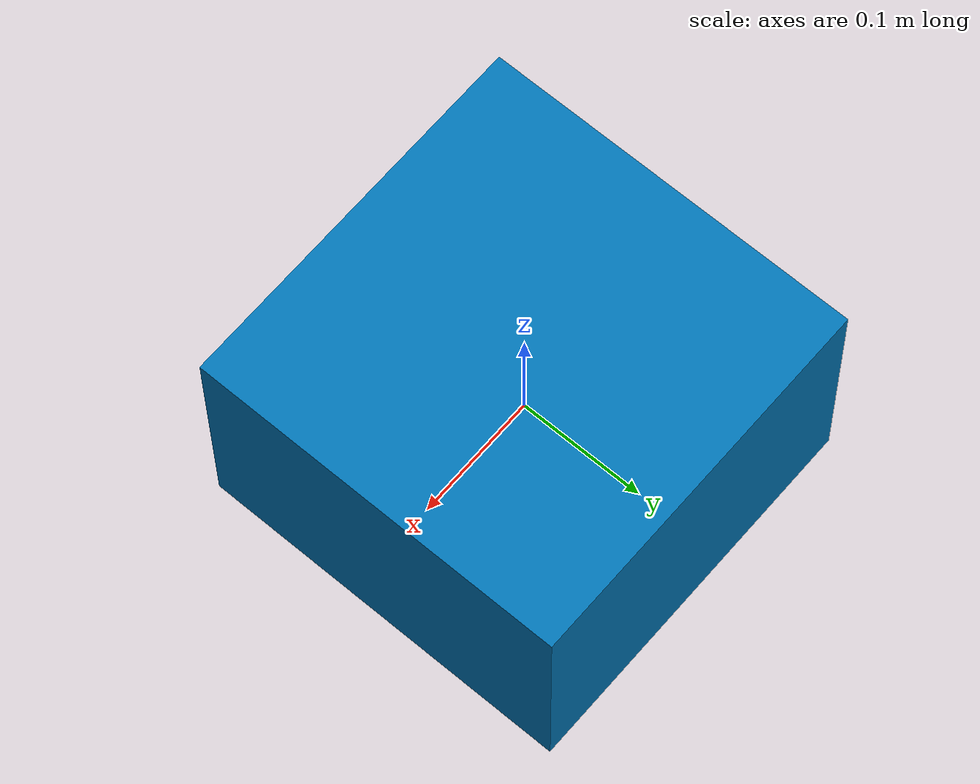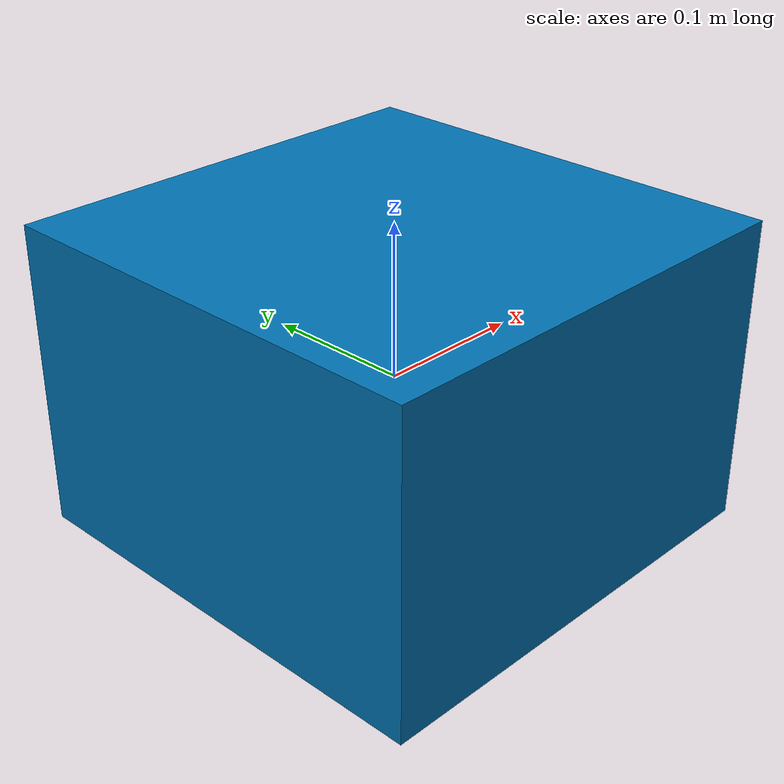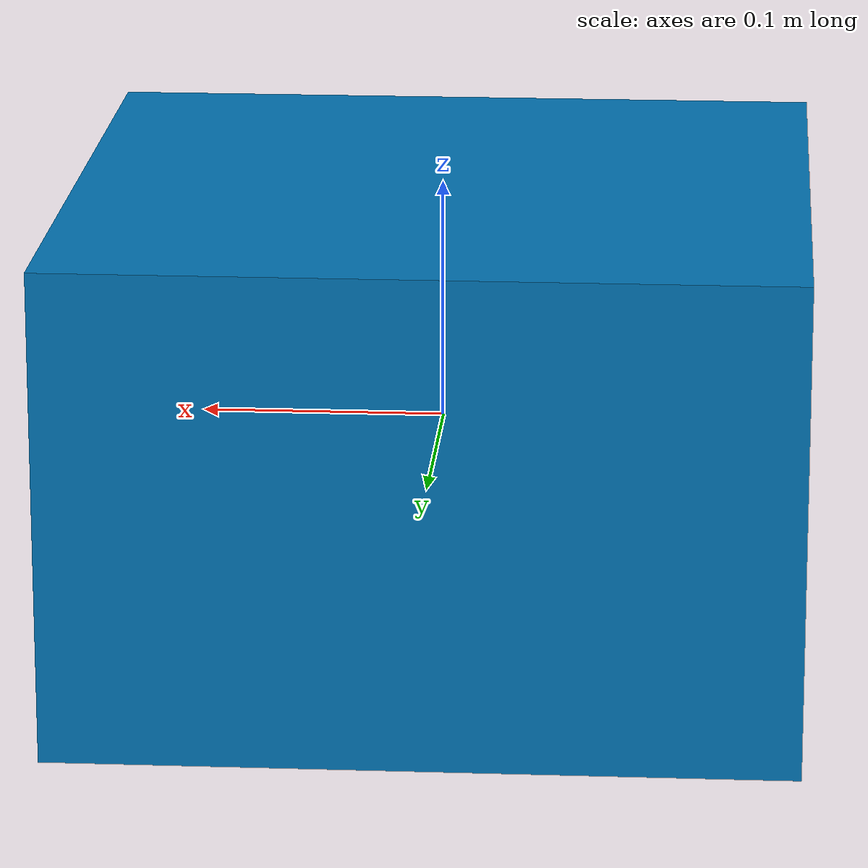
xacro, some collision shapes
<?xml version="1.0"?>
<robot name="roboke" xmlns:xacro="http://www.ros.org/wiki/xacro">
<xacro:include filename="/home/samet/Desktop/robomaster-stl-files/wheels/kodlar/arkatekerler/omnihazirL.xacro"/>
<xacro:include filename="/home/samet/Desktop/robomaster-stl-files/wheels/kodlar/arkatekerler/omnihazirR.xacro"/>
<xacro:include filename="/home/samet/Desktop/robomaster-stl-files/wheels/kodlar/arkatekerler/arkahazirL.xacro"/>
<xacro:include filename="/home/samet/Desktop/robomaster-stl-files/wheels/kodlar/arkatekerler/arkahazirR.xacro"/>
<xacro:include filename="/home/samet/Desktop/robomaster-stl-files/wheels/kodlar/chasishazir.xacro"/>

<xacro:leko/>
<xacro:leko2/>
<xacro:leko3/>
<xacro:leko4/>

<joint name="joint_name2" type="continuous">
    <parent link="basee_link"/>
    <child link="base_link"/>
    <axis xyz="0 0 1"/>
    <origin xyz="0 0 0" rpy="0 0 0"/>
</joint>
<joint name="joint_name3" type="continuous">
    <parent link="basee_link"/>
    <child link="base_link2"/>
    <axis xyz="0 0 1"/>
    <origin xyz="0 0 0" rpy="0 0 0"/>
</joint>
<joint name="joint_name4" type="continuous">
    <parent link="basee_link"/>
    <child link="base_link3"/>
    <axis xyz="0 0 1"/>
    <origin xyz="0 0 0" rpy="0 0 0"/>
</joint>
<joint name="joint_name5" type="continuous">
    <parent link="basee_link"/>
    <child link="base_link4"/>
    <axis xyz="0 0 1"/>
    <origin xyz="0 0 0" rpy="0 0 0"/>
</joint>
<xacro:chasis/>

</robot>

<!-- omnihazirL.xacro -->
<robot xmlns:xacro="http://www.ros.org/wiki/xacro" >
<xacro:macro name="leko">

<link name="base_link">
      <inertial>
        <origin xyz="0 0 0" rpy="0 0 0"/>
        <mass value="0.5"/>
        <inertia ixx="0.1" ixy="0" ixz="0" iyy="0.1" iyz="0" izz="0.1"/>
      </inertial>
      <visual name="visual_0_base_link">
        <origin xyz="0 0 0" rpy="0 0 0"/>
        <geometry>
          <mesh filename="/home/samet/Desktop/isaac_robomaster/meshes/stl/mecanummain.stl" scale="0.002 0.002 0.002"/>
        </geometry>
      </visual>
      <collision name="collision_0_base_link">
        <origin xyz="0 0 0" rpy="0 0 0"/>
        <geometry>
          <cylinder radius="0.1" length="0.08"/>
        </geometry>
      </collision>
    </link>

    <link name="mcn1">
      <inertial>
        <origin xyz="0 0 0" rpy="0 0 0"/>
        <mass value="0.03"/>
        <inertia ixx="0.1" ixy="0" ixz="0" iyy="0.1" iyz="0" izz="0.1"/>
      </inertial>
      <visual name="visual_0_mcn1">
        <origin xyz="0 0 0" rpy="0 0 0"/>
        <geometry>
          <mesh filename="/home/samet/Desktop/isaac_robomaster/meshes/stl/mecanumroller.stl" scale="0.002 0.002 0.002"/>
        </geometry>
      </visual>
      <collision name="collision_0_mcn1">
        <origin xyz="0 0 0" rpy="0 0 0"/>
        <geometry>
          <mesh filename="/home/samet/Desktop/isaac_robomaster/meshes/stl/mecanumroller.stl" scale="0.002 0.002 0.002"/>
        </geometry>
      </collision>
    </link>

    <link name="mcn10">
      <inertial>
        <origin xyz="0 0 0" rpy="0 0 0"/>
        <mass value="0.03"/>
        <inertia ixx="0.1" ixy="0" ixz="0" iyy="0.1" iyz="0" izz="0.1"/>
      </inertial>
      <visual name="visual_0_mcn10">
        <origin xyz="0 0 0" rpy="0 0 0"/>
        <geometry>
          <mesh filename="/home/samet/Desktop/isaac_robomaster/meshes/stl/mecanumroller.stl" scale="0.002 0.002 0.002"/>
        </geometry>
      </visual>
      <collision name="collision_0_mcn10">
        <origin xyz="0 0 0" rpy="0 0 0"/>
        <geometry>
          <mesh filename="/home/samet/Desktop/isaac_robomaster/meshes/stl/mecanumroller.stl" scale="0.002 0.002 0.002"/>
        </geometry>
      </collision>
    </link>

    <link name="mcn11">
      <inertial>
        <origin xyz="0 0 0" rpy="0 0 0"/>
        <mass value="0.03"/>
        <inertia ixx="0.1" ixy="0" ixz="0" iyy="0.1" iyz="0" izz="0.1"/>
      </inertial>
      <visual name="visual_0_mcn11">
        <origin xyz="0 0 0" rpy="0 0 0"/>
        <geometry>
          <mesh filename="/home/samet/Desktop/isaac_robomaster/meshes/stl/mecanumroller.stl" scale="0.002 0.002 0.002"/>
        </geometry>
      </visual>
      <collision name="collision_0_mcn11">
        <origin xyz="0 0 0" rpy="0 0 0"/>
        <geometry>
          <mesh filename="/home/samet/Desktop/isaac_robomaster/meshes/stl/mecanumroller.stl" scale="0.002 0.002 0.002"/>
        </geometry>
      </collision>
    </link>

    <link name="mcn12">
      <inertial>
        <origin xyz="0 0 0" rpy="0 0 0"/>
        <mass value="0.03"/>
        <inertia ixx="0.1" ixy="0" ixz="0" iyy="0.1" iyz="0" izz="0.1"/>
      </inertial>
      <visual name="visual_0_mcn12">
        <origin xyz="0 0 0" rpy="0 0 0"/>
        <geometry>
          <mesh filename="/home/samet/Desktop/isaac_robomaster/meshes/stl/mecanumroller.stl" scale="0.002 0.002 0.002"/>
        </geometry>
      </visual>
      <collision name="collision_0_mcn12">
        <origin xyz="0 0 0" rpy="0 0 0"/>
        <geometry>
          <mesh filename="/home/samet/Desktop/isaac_robomaster/meshes/stl/mecanumroller.stl" scale="0.002 0.002 0.002"/>
        </geometry>
      </collision>
    </link>

    <link name="mcn2">
      <inertial>
        <origin xyz="0 0 0" rpy="0 0 0"/>
        <mass value="0.03"/>
        <inertia ixx="0.1" ixy="0" ixz="0" iyy="0.1" iyz="0" izz="0.1"/>
      </inertial>
      <visual name="visual_0_mcn2">
        <origin xyz="0 0 0" rpy="0 0 0"/>
        <geometry>
          <mesh filename="/home/samet/Desktop/isaac_robomaster/meshes/stl/mecanumroller.stl" scale="0.002 0.002 0.002"/>
        </geometry>
      </visual>
      <collision name="collision_0_mcn2">
        <origin xyz="0 0 0" rpy="0 0 0"/>
        <geometry>
          <mesh filename="/home/samet/Desktop/isaac_robomaster/meshes/stl/mecanumroller.stl" scale="0.002 0.002 0.002"/>
        </geometry>
      </collision>
    </link>

    <link name="mcn3">
      <inertial>
        <origin xyz="0 0 0" rpy="0 0 0"/>
        <mass value="0.03"/>
        <inertia ixx="0.1" ixy="0" ixz="0" iyy="0.1" iyz="0" izz="0.1"/>
      </inertial>
      <visual name="visual_0_mcn3">
        <origin xyz="0 0 0" rpy="0 0 0"/>
        <geometry>
          <mesh filename="/home/samet/Desktop/isaac_robomaster/meshes/stl/mecanumroller.stl" scale="0.002 0.002 0.002"/>
        </geometry>
      </visual>
      <collision name="collision_0_mcn3">
        <origin xyz="0 0 0" rpy="0 0 0"/>
        <geometry>
          <mesh filename="/home/samet/Desktop/isaac_robomaster/meshes/stl/mecanumroller.stl" scale="0.002 0.002 0.002"/>
        </geometry>
      </collision>
    </link>

    <link name="mcn4">
      <inertial>
        <origin xyz="0 0 0" rpy="0 0 0"/>
        <mass value="0.03"/>
        <inertia ixx="0.1" ixy="0" ixz="0" iyy="0.1" iyz="0" izz="0.1"/>
      </inertial>
      <visual name="visual_0_mcn4">
        <origin xyz="0 0 0" rpy="0 0 0"/>
        <geometry>
          <mesh filename="/home/samet/Desktop/isaac_robomaster/meshes/stl/mecanumroller.stl" scale="0.002 0.002 0.002"/>
        </geometry>
      </visual>
      <collision name="collision_0_mcn4">
        <origin xyz="0 0 0" rpy="0 0 0"/>
        <geometry>
          <mesh filename="/home/samet/Desktop/isaac_robomaster/meshes/stl/mecanumroller.stl" scale="0.002 0.002 0.002"/>
        </geometry>
      </collision>
    </link>

    <link name="mcn5">
      <inertial>
        <origin xyz="0 0 0" rpy="0 0 0"/>
        <mass value="0.03"/>
        <inertia ixx="0.1" ixy="0" ixz="0" iyy="0.1" iyz="0" izz="0.1"/>
      </inertial>
      <visual name="visual_0_mcn5">
        <origin xyz="0 0 0" rpy="0 0 0"/>
        <geometry>
          <mesh filename="/home/samet/Desktop/isaac_robomaster/meshes/stl/mecanumroller.stl" scale="0.002 0.002 0.002"/>
        </geometry>
      </visual>
      <collision name="collision_0_mcn5">
        <origin xyz="0 0 0" rpy="0 0 0"/>
        <geometry>
          <mesh filename="/home/samet/Desktop/isaac_robomaster/meshes/stl/mecanumroller.stl" scale="0.002 0.002 0.002"/>
        </geometry>
      </collision>
    </link>

    <link name="mcn6">
      <inertial>
        <origin xyz="0 0 0" rpy="0 0 0"/>
        <mass value="0.03"/>
        <inertia ixx="0.1" ixy="0" ixz="0" iyy="0.1" iyz="0" izz="0.1"/>
      </inertial>
      <visual name="visual_0_mcn6">
        <origin xyz="0 0 0" rpy="0 0 0"/>
        <geometry>
          <mesh filename="/home/samet/Desktop/isaac_robomaster/meshes/stl/mecanumroller.stl" scale="0.002 0.002 0.002"/>
        </geometry>
      </visual>
      <collision name="collision_0_mcn6">
        <origin xyz="0 0 0" rpy="0 0 0"/>
        <geometry>
          <mesh filename="/home/samet/Desktop/isaac_robomaster/meshes/stl/mecanumroller.stl" scale="0.002 0.002 0.002"/>
        </geometry>
      </collision>
    </link>

    <link name="mcn7">
      <inertial>
        <origin xyz="0 0 0" rpy="0 0 0"/>
        <mass value="0.03"/>
        <inertia ixx="0.1" ixy="0" ixz="0" iyy="0.1" iyz="0" izz="0.1"/>
      </inertial>
      <visual name="visual_0_mcn7">
        <origin xyz="0 0 0" rpy="0 0 0"/>
        <geometry>
          <mesh filename="/home/samet/Desktop/isaac_robomaster/meshes/stl/mecanumroller.stl" scale="0.002 0.002 0.002"/>
        </geometry>
      </visual>
      <collision name="collision_0_mcn7">
        <origin xyz="0 0 0" rpy="0 0 0"/>
        <geometry>
          <mesh filename="/home/samet/Desktop/isaac_robomaster/meshes/stl/mecanumroller.stl" scale="0.002 0.002 0.002"/>
        </geometry>
      </collision>
    </link>

    <link name="mcn8">
      <inertial>
        <origin xyz="0 0 0" rpy="0 0 0"/>
        <mass value="0.03"/>
        <inertia ixx="0.1" ixy="0" ixz="0" iyy="0.1" iyz="0" izz="0.1"/>
      </inertial>
      <visual name="visual_0_mcn8">
        <origin xyz="0 0 0" rpy="0 0 0"/>
        <geometry>
          <mesh filename="/home/samet/Desktop/isaac_robomaster/meshes/stl/mecanumroller.stl" scale="0.002 0.002 0.002"/>
        </geometry>
      </visual>
      <collision name="collision_0_mcn8">
        <origin xyz="0 0 0" rpy="0 0 0"/>
        <geometry>
          <mesh filename="/home/samet/Desktop/isaac_robomaster/meshes/stl/mecanumroller.stl" scale="0.002 0.002 0.002"/>
        </geometry>
      </collision>
    </link>

    <link name="mcn9">
      <inertial>
        <origin xyz="0 0 0" rpy="0 0 0"/>
        <mass value="0.03"/>
        <inertia ixx="0.1" ixy="0" ixz="0" iyy="0.1" iyz="0" izz="0.1"/>
      </inertial>
      <visual name="visual_0_mcn9">
        <origin xyz="0 0 0" rpy="0 0 0"/>
        <geometry>
          <mesh filename="/home/samet/Desktop/isaac_robomaster/meshes/stl/mecanumroller.stl" scale="0.002 0.002 0.002"/>
        </geometry>
      </visual>
      <collision name="collision_0_mcn9">
        <origin xyz="0 0 0" rpy="0 0 0"/>
        <geometry>
          <mesh filename="/home/samet/Desktop/isaac_robomaster/meshes/stl/mecanumroller.stl" scale="0.002 0.002 0.002"/>
        </geometry>
      </collision>
    </link>

    <joint name="joint1" type="continuous">
      <origin xyz="0.07167 -0.05076 0.02846" rpy="-1.76186 -0.79552 1.05175"/>
      <parent link="base_link"/>
      <child link="mcn1"/>
      <axis xyz="1.0 0 0"/>
    </joint>

    <joint name="joint10" type="continuous">
      <origin xyz="-0.05038 -0.07171 0.02782" rpy="0.5806 -0.79466 -0.51932"/>
      <parent link="base_link"/>
      <child link="mcn10"/>
      <axis xyz="1.0 0 0"/>
    </joint>

    <joint name="joint11" type="continuous">
      <origin xyz="-0.00767 -0.08779 0.02845" rpy="0.10036 -0.79327 0.03137"/>
      <parent link="base_link"/>
      <child link="mcn11"/>
      <axis xyz="1.0 0 0"/>
    </joint>

    <joint name="joint12" type="continuous">
      <origin xyz="0.03673 -0.07863 0.02825" rpy="0.75677 -0.79045 0.52668"/>
      <parent link="base_link"/>
      <child link="mcn12"/>
      <axis xyz="1.0 0 0"/>
    </joint>

    <joint name="joint2" type="continuous">
      <origin xyz="0.0864 -0.00753 0.02879" rpy="0.83828 -0.82486 1.56595"/>
      <parent link="base_link"/>
      <child link="mcn2"/>
      <axis xyz="1.0 0 0"/>
    </joint>

    <joint name="joint3" type="continuous">
      <origin xyz="0.08054 0.03653 0.02804" rpy="-0.91674 -0.80295 2.13129"/>
      <parent link="base_link"/>
      <child link="mcn3"/>
      <axis xyz="1.0 0 0"/>
    </joint>

    <joint name="joint4" type="continuous">
      <origin xyz="0.05184 0.06967 0.02692" rpy="-0.10837 -2.34403 -0.53781"/>
      <parent link="base_link"/>
      <child link="mcn4"/>
      <axis xyz="1.0 0 0"/>
    </joint>

    <joint name="joint5" type="continuous">
      <origin xyz="0.00816 0.08667 0.02858" rpy="0.16079 -2.35154 0.00616"/>
      <parent link="base_link"/>
      <child link="mcn5"/>
      <axis xyz="1.0 0 0"/>
    </joint>

    <joint name="joint6" type="continuous">
      <origin xyz="-0.07119 0.05132 0.02734" rpy="-0.75572 -2.34708 1.04931"/>
      <parent link="base_link"/>
      <child link="mcn6"/>
      <axis xyz="1.0 0 0"/>
    </joint>

    <joint name="joint7" type="continuous">
      <origin xyz="-0.03617 0.07901 0.0277" rpy="-1.06708 -2.36432 0.51602"/>
      <parent link="base_link"/>
      <child link="mcn7"/>
      <axis xyz="1.0 0 0"/>
    </joint>

    <joint name="joint8" type="continuous">
      <origin xyz="-0.08659 0.00832 0.02734" rpy="1.5226 -0.80215 -1.58604"/>
      <parent link="base_link"/>
      <child link="mcn8"/>
      <axis xyz="1.0 0 0"/>
    </joint>

    <joint name="joint9" type="continuous">
      <origin xyz="-0.0796 -0.03654 0.02721" rpy="0.14692 -0.78569 -1.04079"/>
      <parent link="base_link"/>
      <child link="mcn9"/>
      <axis xyz="1.0 0 0"/>
    </joint>

</xacro:macro>
</robot>

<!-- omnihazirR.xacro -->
<robot xmlns:xacro="http://www.ros.org/wiki/xacro" >
<xacro:macro name="leko2">

<link name="base_link2">
      <inertial>
        <origin xyz="0 0 0" rpy="0 0 0"/>
        <mass value="0.5"/>
        <inertia ixx="0.1" ixy="0" ixz="0" iyy="0.1" iyz="0" izz="0.1"/>
      </inertial>
      <visual>
        <origin xyz="0 0 0" rpy="0 0 0"/>
        <geometry>
          <mesh filename="/home/samet/Desktop/isaac_robomaster/meshes/stl/mecanummain.stl" scale="0.002 0.002 0.002"/>
        </geometry>
      </visual>
      <collision>
        <origin xyz="0 0 0" rpy="0 0 0"/>
        <geometry>
          <cylinder radius="0.1" length="0.08"/>
        </geometry>
      </collision>
    </link>

    <link name="mcnN1">
      <inertial>
        <origin xyz="0 0 0" rpy="0 0 0"/>
        <mass value="0.03"/>
        <inertia ixx="0.1" ixy="0" ixz="0" iyy="0.1" iyz="0" izz="0.1"/>
      </inertial>
      <visual>
        <origin xyz="0 0 0" rpy="0 0 0"/>
        <geometry>
          <mesh filename="/home/samet/Desktop/isaac_robomaster/meshes/stl/mecanumroller.stl" scale="0.002 0.002 0.002"/>
        </geometry>
      </visual>
      <collision>
        <origin xyz="0 0 0" rpy="0 0 0"/>
        <geometry>
          <mesh filename="/home/samet/Desktop/isaac_robomaster/meshes/stl/mecanumroller.stl" scale="0.002 0.002 0.002"/>
        </geometry>
      </collision>
    </link>

    <link name="mcnN10">
      <inertial>
        <origin xyz="0 0 0" rpy="0 0 0"/>
        <mass value="0.03"/>
        <inertia ixx="0.1" ixy="0" ixz="0" iyy="0.1" iyz="0" izz="0.1"/>
      </inertial>
      <visual>
        <origin xyz="0 0 0" rpy="0 0 0"/>
        <geometry>
          <mesh filename="/home/samet/Desktop/isaac_robomaster/meshes/stl/mecanumroller.stl" scale="0.002 0.002 0.002"/>
        </geometry>
      </visual>
      <collision>
        <origin xyz="0 0 0" rpy="0 0 0"/>
        <geometry>
          <mesh filename="/home/samet/Desktop/isaac_robomaster/meshes/stl/mecanumroller.stl" scale="0.002 0.002 0.002"/>
        </geometry>
      </collision>
    </link>

    <link name="mcnN11">
      <inertial>
        <origin xyz="0 0 0" rpy="0 0 0"/>
        <mass value="0.03"/>
        <inertia ixx="0.1" ixy="0" ixz="0" iyy="0.1" iyz="0" izz="0.1"/>
      </inertial>
      <visual>
        <origin xyz="0 0 0" rpy="0 0 0"/>
        <geometry>
          <mesh filename="/home/samet/Desktop/isaac_robomaster/meshes/stl/mecanumroller.stl" scale="0.002 0.002 0.002"/>
        </geometry>
      </visual>
      <collision>
        <origin xyz="0 0 0" rpy="0 0 0"/>
        <geometry>
          <mesh filename="/home/samet/Desktop/isaac_robomaster/meshes/stl/mecanumroller.stl" scale="0.002 0.002 0.002"/>
        </geometry>
      </collision>
    </link>

    <link name="mcnN12">
      <inertial>
        <origin xyz="0 0 0" rpy="0 0 0"/>
        <mass value="0.03"/>
        <inertia ixx="0.1" ixy="0" ixz="0" iyy="0.1" iyz="0" izz="0.1"/>
      </inertial>
      <visual>
        <origin xyz="0 0 0" rpy="0 0 0"/>
        <geometry>
          <mesh filename="/home/samet/Desktop/isaac_robomaster/meshes/stl/mecanumroller.stl" scale="0.002 0.002 0.002"/>
        </geometry>
      </visual>
      <collision>
        <origin xyz="0 0 0" rpy="0 0 0"/>
        <geometry>
          <mesh filename="/home/samet/Desktop/isaac_robomaster/meshes/stl/mecanumroller.stl" scale="0.002 0.002 0.002"/>
        </geometry>
      </collision>
    </link>

    <link name="mcnN2">
      <inertial>
        <origin xyz="0 0 0" rpy="0 0 0"/>
        <mass value="0.03"/>
        <inertia ixx="0.1" ixy="0" ixz="0" iyy="0.1" iyz="0" izz="0.1"/>
      </inertial>
      <visual>
        <origin xyz="0 0 0" rpy="0 0 0"/>
        <geometry>
          <mesh filename="/home/samet/Desktop/isaac_robomaster/meshes/stl/mecanumroller.stl" scale="0.002 0.002 0.002"/>
        </geometry>
      </visual>
      <collision>
        <origin xyz="0 0 0" rpy="0 0 0"/>
        <geometry>
          <mesh filename="/home/samet/Desktop/isaac_robomaster/meshes/stl/mecanumroller.stl" scale="0.002 0.002 0.002"/>
        </geometry>
      </collision>
    </link>

    <link name="mcnN3">
      <inertial>
        <origin xyz="0 0 0" rpy="0 0 0"/>
        <mass value="0.03"/>
        <inertia ixx="0.1" ixy="0" ixz="0" iyy="0.1" iyz="0" izz="0.1"/>
      </inertial>
      <visual>
        <origin xyz="0 0 0" rpy="0 0 0"/>
        <geometry>
          <mesh filename="/home/samet/Desktop/isaac_robomaster/meshes/stl/mecanumroller.stl" scale="0.002 0.002 0.002"/>
        </geometry>
      </visual>
      <collision>
        <origin xyz="0 0 0" rpy="0 0 0"/>
        <geometry>
          <mesh filename="/home/samet/Desktop/isaac_robomaster/meshes/stl/mecanumroller.stl" scale="0.002 0.002 0.002"/>
        </geometry>
      </collision>
    </link>

    <link name="mcnN4">
      <inertial>
        <origin xyz="0 0 0" rpy="0 0 0"/>
        <mass value="0.03"/>
        <inertia ixx="0.1" ixy="0" ixz="0" iyy="0.1" iyz="0" izz="0.1"/>
      </inertial>
      <visual>
        <origin xyz="0 0 0" rpy="0 0 0"/>
        <geometry>
          <mesh filename="/home/samet/Desktop/isaac_robomaster/meshes/stl/mecanumroller.stl" scale="0.002 0.002 0.002"/>
        </geometry>
      </visual>
      <collision>
        <origin xyz="0 0 0" rpy="0 0 0"/>
        <geometry>
          <mesh filename="/home/samet/Desktop/isaac_robomaster/meshes/stl/mecanumroller.stl" scale="0.002 0.002 0.002"/>
        </geometry>
      </collision>
    </link>

    <link name="mcnN5">
      <inertial>
        <origin xyz="0 0 0" rpy="0 0 0"/>
        <mass value="0.03"/>
        <inertia ixx="0.1" ixy="0" ixz="0" iyy="0.1" iyz="0" izz="0.1"/>
      </inertial>
      <visual>
        <origin xyz="0 0 0" rpy="0 0 0"/>
        <geometry>
          <mesh filename="/home/samet/Desktop/isaac_robomaster/meshes/stl/mecanumroller.stl" scale="0.002 0.002 0.002"/>
        </geometry>
      </visual>
      <collision>
        <origin xyz="0 0 0" rpy="0 0 0"/>
        <geometry>
          <mesh filename="/home/samet/Desktop/isaac_robomaster/meshes/stl/mecanumroller.stl" scale="0.002 0.002 0.002"/>
        </geometry>
      </collision>
    </link>

    <link name="mcnN6">
      <inertial>
        <origin xyz="0 0 0" rpy="0 0 0"/>
        <mass value="0.03"/>
        <inertia ixx="0.1" ixy="0" ixz="0" iyy="0.1" iyz="0" izz="0.1"/>
      </inertial>
      <visual>
        <origin xyz="0 0 0" rpy="0 0 0"/>
        <geometry>
          <mesh filename="/home/samet/Desktop/isaac_robomaster/meshes/stl/mecanumroller.stl" scale="0.002 0.002 0.002"/>
        </geometry>
      </visual>
      <collision>
        <origin xyz="0 0 0" rpy="0 0 0"/>
        <geometry>
          <mesh filename="/home/samet/Desktop/isaac_robomaster/meshes/stl/mecanumroller.stl" scale="0.002 0.002 0.002"/>
        </geometry>
      </collision>
    </link>

    <link name="mcnN7">
      <inertial>
        <origin xyz="0 0 0" rpy="0 0 0"/>
        <mass value="0.03"/>
        <inertia ixx="0.1" ixy="0" ixz="0" iyy="0.1" iyz="0" izz="0.1"/>
      </inertial>
      <visual>
        <origin xyz="0 0 0" rpy="0 0 0"/>
        <geometry>
          <mesh filename="/home/samet/Desktop/isaac_robomaster/meshes/stl/mecanumroller.stl" scale="0.002 0.002 0.002"/>
        </geometry>
      </visual>
      <collision>
        <origin xyz="0 0 0" rpy="0 0 0"/>
        <geometry>
          <mesh filename="/home/samet/Desktop/isaac_robomaster/meshes/stl/mecanumroller.stl" scale="0.002 0.002 0.002"/>
        </geometry>
      </collision>
    </link>

    <link name="mcnN8">
      <inertial>
        <origin xyz="0 0 0" rpy="0 0 0"/>
        <mass value="0.03"/>
        <inertia ixx="0.1" ixy="0" ixz="0" iyy="0.1" iyz="0" izz="0.1"/>
      </inertial>
      <visual>
        <origin xyz="0 0 0" rpy="0 0 0"/>
        <geometry>
          <mesh filename="/home/samet/Desktop/isaac_robomaster/meshes/stl/mecanumroller.stl" scale="0.002 0.002 0.002"/>
        </geometry>
      </visual>
      <collision>
        <origin xyz="0 0 0" rpy="0 0 0"/>
        <geometry>
          <mesh filename="/home/samet/Desktop/isaac_robomaster/meshes/stl/mecanumroller.stl" scale="0.002 0.002 0.002"/>
        </geometry>
      </collision>
    </link>

    <link name="mcnN9">
      <inertial>
        <origin xyz="0 0 0" rpy="0 0 0"/>
        <mass value="0.03"/>
        <inertia ixx="0.1" ixy="0" ixz="0" iyy="0.1" iyz="0" izz="0.1"/>
      </inertial>
      <visual>
        <origin xyz="0 0 0" rpy="0 0 0"/>
        <geometry>
          <mesh filename="/home/samet/Desktop/isaac_robomaster/meshes/stl/mecanumroller.stl" scale="0.002 0.002 0.002"/>
        </geometry>
      </visual>
      <collision>
        <origin xyz="0 0 0" rpy="0 0 0"/>
        <geometry>
          <mesh filename="/home/samet/Desktop/isaac_robomaster/meshes/stl/mecanumroller.stl" scale="0.002 0.002 0.002"/>
        </geometry>
      </collision>
    </link>

    <joint name="jjoint1" type="continuous">
      <origin xyz="0.07167 -0.05076 0.02846" rpy="-1.76186 -0.79552 1.05175"/>
      <parent link="base_link2"/>
      <child link="mcnN1"/>
      <axis xyz="1.0 0 0"/>
    </joint>

    <joint name="jjoint10" type="continuous">
      <origin xyz="-0.05038 -0.07171 0.02782" rpy="0.5806 -0.79466 -0.51932"/>
      <parent link="base_link2"/>
      <child link="mcnN10"/>
      <axis xyz="1.0 0 0"/>
    </joint>

    <joint name="jjoint11" type="continuous">
      <origin xyz="-0.00767 -0.08779 0.02845" rpy="0.10036 -0.79327 0.03137"/>
      <parent link="base_link2"/>
      <child link="mcnN11"/>
      <axis xyz="1.0 0 0"/>
    </joint>

    <joint name="jjoint12" type="continuous">
      <origin xyz="0.03673 -0.07863 0.02825" rpy="0.75677 -0.79045 0.52668"/>
      <parent link="base_link2"/>
      <child link="mcnN12"/>
      <axis xyz="1.0 0 0"/>
    </joint>

    <joint name="jjoint2" type="continuous">
      <origin xyz="0.0864 -0.00753 0.02879" rpy="0.83828 -0.82486 1.56595"/>
      <parent link="base_link2"/>
      <child link="mcnN2"/>
      <axis xyz="1.0 0 0"/>
    </joint>

    <joint name="jjoint3" type="continuous">
      <origin xyz="0.08054 0.03653 0.02804" rpy="-0.91674 -0.80295 2.13129"/>
      <parent link="base_link2"/>
      <child link="mcnN3"/>
      <axis xyz="1.0 0 0"/>
    </joint>

    <joint name="jjoint4" type="continuous">
      <origin xyz="0.05184 0.06967 0.02692" rpy="-0.10837 -2.34403 -0.53781"/>
      <parent link="base_link2"/>
      <child link="mcnN4"/>
      <axis xyz="1.0 0 0"/>
    </joint>

    <joint name="jjoint5" type="continuous">
      <origin xyz="0.00816 0.08667 0.02858" rpy="0.16079 -2.35154 0.00616"/>
      <parent link="base_link2"/>
      <child link="mcnN5"/>
      <axis xyz="1.0 0 0"/>
    </joint>

    <joint name="jjoint6" type="continuous">
      <origin xyz="-0.07119 0.05132 0.02734" rpy="-0.75572 -2.34708 1.04931"/>
      <parent link="base_link2"/>
      <child link="mcnN6"/>
      <axis xyz="1.0 0 0"/>
    </joint>

    <joint name="jjoint7" type="continuous">
      <origin xyz="-0.03617 0.07901 0.0277" rpy="-1.06708 -2.36432 0.51602"/>
      <parent link="base_link2"/>
      <child link="mcnN7"/>
      <axis xyz="1.0 0 0"/>
    </joint>

    <joint name="jjoint8" type="continuous">
      <origin xyz="-0.08659 0.00832 0.02734" rpy="1.5226 -0.80215 -1.58604"/>
      <parent link="base_link2"/>
      <child link="mcnN8"/>
      <axis xyz="1.0 0 0"/>
    </joint>

    <joint name="jjoint9" type="continuous">
      <origin xyz="-0.0796 -0.03654 0.02721" rpy="0.14692 -0.78569 -1.04079"/>
      <parent link="base_link2"/>
      <child link="mcnN9"/>
      <axis xyz="1.0 0 0"/>
    </joint>

</xacro:macro>
</robot>

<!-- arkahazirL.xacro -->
<!-- created with Phobos 1.0.1 "Capricious Choutengan" -->
 <robot xmlns:xacro="http://www.ros.org/wiki/xacro" >
<xacro:macro name="leko3">

    <link name="base_link3">
      <inertial>
        <origin xyz="0 0 0" rpy="0 0 0"/>
        <mass value="0.5"/>
        <inertia ixx="0.1" ixy="0" ixz="0" iyy="0.1" iyz="0" izz="0.1"/>
      </inertial>
      <visual>
        <origin xyz="0 0 0" rpy="0 0 0"/>
        <geometry>
          <mesh filename="/home/samet/Desktop/robomaster-stl-files/wheels/mecanumcenter2.stl" scale="0.002 0.002 0.002"/>
        </geometry>
      </visual>
      <collision>
        <origin xyz="0 0 0" rpy="0 0 0"/>
        <geometry>
          <cylinder radius="0.1" length="0.08"/>
        </geometry>
      </collision>
    </link>

    <link name="mcnNArka1">
      <inertial>
        <origin xyz="0 0 0" rpy="0 0 0"/>
        <mass value="0.03"/>
        <inertia ixx="0.1" ixy="0" ixz="0" iyy="0.1" iyz="0" izz="0.1"/>
      </inertial>
      <visual>
        <origin xyz="0 0 0" rpy="0 0 0"/>
        <geometry>
          <mesh filename="/home/samet/Desktop/robomaster-stl-files/wheels/mecanumroller.stl" scale="0.002 0.002 0.002"/>
        </geometry>
      </visual>
      <collision>
        <origin xyz="0 0 0" rpy="0 0 0"/>
        <geometry>
          <mesh filename="/home/samet/Desktop/robomaster-stl-files/wheels/mecanumroller.stl" scale="0.002 0.002 0.002"/>
        </geometry>
      </collision>
    </link>

    <link name="mcnNArka10">
      <inertial>
        <origin xyz="0 0 0" rpy="0 0 0"/>
        <mass value="0.03"/>
        <inertia ixx="0.1" ixy="0" ixz="0" iyy="0.1" iyz="0" izz="0.1"/>
      </inertial>
      <visual>
        <origin xyz="0 0 0" rpy="0 0 0"/>
        <geometry>
          <mesh filename="/home/samet/Desktop/robomaster-stl-files/wheels/mecanumroller.stl" scale="0.002 0.002 0.002"/>
        </geometry>
      </visual>
      <collision>
        <origin xyz="0 0 0" rpy="0 0 0"/>
        <geometry>
          <mesh filename="/home/samet/Desktop/robomaster-stl-files/wheels/mecanumroller.stl" scale="0.002 0.002 0.002"/>
        </geometry>
      </collision>
    </link>

    <link name="mcnNArka11">
      <inertial>
        <origin xyz="0 0 0" rpy="0 0 0"/>
        <mass value="0.03"/>
        <inertia ixx="0.1" ixy="0" ixz="0" iyy="0.1" iyz="0" izz="0.1"/>
      </inertial>
      <visual>
        <origin xyz="0 0 0" rpy="0 0 0"/>
        <geometry>
          <mesh filename="/home/samet/Desktop/robomaster-stl-files/wheels/mecanumroller.stl" scale="0.002 0.002 0.002"/>
        </geometry>
      </visual>
      <collision>
        <origin xyz="0 0 0" rpy="0 0 0"/>
        <geometry>
          <mesh filename="/home/samet/Desktop/robomaster-stl-files/wheels/mecanumroller.stl" scale="0.002 0.002 0.002"/>
        </geometry>
      </collision>
    </link>

    <link name="mcnNArka12">
      <inertial>
        <origin xyz="0 0 0" rpy="0 0 0"/>
        <mass value="0.03"/>
        <inertia ixx="0.1" ixy="0" ixz="0" iyy="0.1" iyz="0" izz="0.1"/>
      </inertial>
      <visual>
        <origin xyz="0 0 0" rpy="0 0 0"/>
        <geometry>
          <mesh filename="/home/samet/Desktop/robomaster-stl-files/wheels/mecanumroller.stl" scale="0.002 0.002 0.002"/>
        </geometry>
      </visual>
      <collision>
        <origin xyz="0 0 0" rpy="0 0 0"/>
        <geometry>
          <mesh filename="/home/samet/Desktop/robomaster-stl-files/wheels/mecanumroller.stl" scale="0.002 0.002 0.002"/>
        </geometry>
      </collision>
    </link>

    <link name="mcnNArka2">
      <inertial>
        <origin xyz="0 0 0" rpy="0 0 0"/>
        <mass value="0.03"/>
        <inertia ixx="0.1" ixy="0" ixz="0" iyy="0.1" iyz="0" izz="0.1"/>
      </inertial>
      <visual>
        <origin xyz="0 0 0" rpy="0 0 0"/>
        <geometry>
          <mesh filename="/home/samet/Desktop/robomaster-stl-files/wheels/mecanumroller.stl" scale="0.002 0.002 0.002"/>
        </geometry>
      </visual>
      <collision>
        <origin xyz="0 0 0" rpy="0 0 0"/>
        <geometry>
          <mesh filename="/home/samet/Desktop/robomaster-stl-files/wheels/mecanumroller.stl" scale="0.002 0.002 0.002"/>
        </geometry>
      </collision>
    </link>

    <link name="mcnNArka3">
      <inertial>
        <origin xyz="0 0 0" rpy="0 0 0"/>
        <mass value="0.03"/>
        <inertia ixx="0.1" ixy="0" ixz="0" iyy="0.1" iyz="0" izz="0.1"/>
      </inertial>
      <visual>
        <origin xyz="0 0 0" rpy="0 0 0"/>
        <geometry>
          <mesh filename="/home/samet/Desktop/robomaster-stl-files/wheels/mecanumroller.stl" scale="0.002 0.002 0.002"/>
        </geometry>
      </visual>
      <collision>
        <origin xyz="0 0 0" rpy="0 0 0"/>
        <geometry>
          <mesh filename="/home/samet/Desktop/robomaster-stl-files/wheels/mecanumroller.stl" scale="0.002 0.002 0.002"/>
        </geometry>
      </collision>
    </link>

    <link name="mcnNArka4">
      <inertial>
        <origin xyz="0 0 0" rpy="0 0 0"/>
        <mass value="0.03"/>
        <inertia ixx="0.1" ixy="0" ixz="0" iyy="0.1" iyz="0" izz="0.1"/>
      </inertial>
      <visual>
        <origin xyz="0 0 0" rpy="0 0 0"/>
        <geometry>
          <mesh filename="/home/samet/Desktop/robomaster-stl-files/wheels/mecanumroller.stl" scale="0.002 0.002 0.002"/>
        </geometry>
      </visual>
      <collision>
        <origin xyz="0 0 0" rpy="0 0 0"/>
        <geometry>
          <mesh filename="/home/samet/Desktop/robomaster-stl-files/wheels/mecanumroller.stl" scale="0.002 0.002 0.002"/>
        </geometry>
      </collision>
    </link>

    <link name="mcnNArka5">
      <inertial>
        <origin xyz="0 0 0" rpy="0 0 0"/>
        <mass value="0.03"/>
        <inertia ixx="0.1" ixy="0" ixz="0" iyy="0.1" iyz="0" izz="0.1"/>
      </inertial>
      <visual>
        <origin xyz="0 0 0" rpy="0 0 0"/>
        <geometry>
          <mesh filename="/home/samet/Desktop/robomaster-stl-files/wheels/mecanumroller.stl" scale="0.002 0.002 0.002"/>
        </geometry>
      </visual>
      <collision>
        <origin xyz="0 0 0" rpy="0 0 0"/>
        <geometry>
          <mesh filename="/home/samet/Desktop/robomaster-stl-files/wheels/mecanumroller.stl" scale="0.002 0.002 0.002"/>
        </geometry>
      </collision>
    </link>

    <link name="mcnNArka6">
      <inertial>
        <origin xyz="0 0 0" rpy="0 0 0"/>
        <mass value="0.03"/>
        <inertia ixx="0.1" ixy="0" ixz="0" iyy="0.1" iyz="0" izz="0.1"/>
      </inertial>
      <visual>
        <origin xyz="0 0 0" rpy="0 0 0"/>
        <geometry>
          <mesh filename="/home/samet/Desktop/robomaster-stl-files/wheels/mecanumroller.stl" scale="0.002 0.002 0.002"/>
        </geometry>
      </visual>
      <collision>
        <origin xyz="0 0 0" rpy="0 0 0"/>
        <geometry>
          <mesh filename="/home/samet/Desktop/robomaster-stl-files/wheels/mecanumroller.stl" scale="0.002 0.002 0.002"/>
        </geometry>
      </collision>
    </link>

    <link name="mcnNArka7">
      <inertial>
        <origin xyz="0 0 0" rpy="0 0 0"/>
        <mass value="0.03"/>
        <inertia ixx="0.1" ixy="0" ixz="0" iyy="0.1" iyz="0" izz="0.1"/>
      </inertial>
      <visual>
        <origin xyz="0 0 0" rpy="0 0 0"/>
        <geometry>
          <mesh filename="/home/samet/Desktop/robomaster-stl-files/wheels/mecanumroller.stl" scale="0.002 0.002 0.002"/>
        </geometry>
      </visual>
      <collision>
        <origin xyz="0 0 0" rpy="0 0 0"/>
        <geometry>
          <mesh filename="/home/samet/Desktop/robomaster-stl-files/wheels/mecanumroller.stl" scale="0.002 0.002 0.002"/>
        </geometry>
      </collision>
    </link>

    <link name="mcnNArka8">
      <inertial>
        <origin xyz="0 0 0" rpy="0 0 0"/>
        <mass value="0.03"/>
        <inertia ixx="0.1" ixy="0" ixz="0" iyy="0.1" iyz="0" izz="0.1"/>
      </inertial>
      <visual>
        <origin xyz="0 0 0" rpy="0 0 0"/>
        <geometry>
          <mesh filename="/home/samet/Desktop/robomaster-stl-files/wheels/mecanumroller.stl" scale="0.002 0.002 0.002"/>
        </geometry>
      </visual>
      <collision>
        <origin xyz="0 0 0" rpy="0 0 0"/>
        <geometry>
          <mesh filename="/home/samet/Desktop/robomaster-stl-files/wheels/mecanumroller.stl" scale="0.002 0.002 0.002"/>
        </geometry>
      </collision>
    </link>

    <link name="mcnNArka9">
      <inertial>
        <origin xyz="0 0 0" rpy="0 0 0"/>
        <mass value="0.03"/>
        <inertia ixx="0.1" ixy="0" ixz="0" iyy="0.1" iyz="0" izz="0.1"/>
      </inertial>
      <visual>
        <origin xyz="0 0 0" rpy="0 0 0"/>
        <geometry>
          <mesh filename="/home/samet/Desktop/robomaster-stl-files/wheels/mecanumroller.stl" scale="0.002 0.002 0.002"/>
        </geometry>
      </visual>
      <collision>
        <origin xyz="0 0 0" rpy="0 0 0"/>
        <geometry>
          <mesh filename="/home/samet/Desktop/robomaster-stl-files/wheels/mecanumroller.stl" scale="0.002 0.002 0.002"/>
        </geometry>
      </collision>
    </link>

    <joint name="jjjoint1" type="continuous">
      <origin xyz="0.08098 -0.03389 0.02632" rpy="1.69616 -0.78865 -2.09076"/>
      <parent link="base_link3"/>
      <child link="mcnNArka1"/>
      <axis xyz="1.0 0 0"/>
    </joint>

    <joint name="jjjoint10" type="continuous">
      <origin xyz="-0.03447 -0.08054 0.02726" rpy="0.16809 -2.34167 -0.52068"/>
      <parent link="base_link3"/>
      <child link="mcnNArka10"/>
      <axis xyz="1.0 0 0"/>
    </joint>

    <joint name="jjjoint11" type="continuous">
      <origin xyz="0.01035 -0.08714 0.02744" rpy="0.20837 -2.34561 -0.00054"/>
      <parent link="base_link3"/>
      <child link="mcnNArka11"/>
      <axis xyz="1.0 0 0"/>
    </joint>

    <joint name="jjjoint12" type="continuous">
      <origin xyz="0.05215 -0.0703 0.02768" rpy="1.39158 -2.3543 0.52842"/>
      <parent link="base_link3"/>
      <child link="mcnNArka12"/>
      <axis xyz="1.0 0 0"/>
    </joint>

    <joint name="jjjoint2" type="continuous">
      <origin xyz="0.08702 0.01083 0.02674" rpy="0.15693 -2.35442 1.57268"/>
      <parent link="base_link3"/>
      <child link="mcnNArka2"/>
      <axis xyz="1.0 0 0"/>
    </joint>

    <joint name="jjjoint3" type="continuous">
      <origin xyz="0.07027 0.0522 0.02725" rpy="1.99732 -0.78629 -1.0356"/>
      <parent link="base_link3"/>
      <child link="mcnNArka3"/>
      <axis xyz="1.0 0 0"/>
    </joint>

    <joint name="jjjoint4" type="continuous">
      <origin xyz="0.03408 0.08081 0.02656" rpy="-0.01116 -0.78641 -0.52158"/>
      <parent link="base_link3"/>
      <child link="mcnNArka4"/>
      <axis xyz="1.0 0 0"/>
    </joint>

    <joint name="jjjoint5" type="continuous">
      <origin xyz="-0.00989 0.08688 0.02757" rpy="0.22604 -0.78465 0.00764"/>
      <parent link="base_link3"/>
      <child link="mcnNArka5"/>
      <axis xyz="1.0 0 0"/>
    </joint>

    <joint name="jjjoint6" type="continuous">
      <origin xyz="-0.07998 0.03542 0.02784" rpy="-0.92993 -0.78212 1.05974"/>
      <parent link="base_link3"/>
      <child link="mcnNArka6"/>
      <axis xyz="1.0 0 0"/>
    </joint>

    <joint name="jjjoint7" type="continuous">
      <origin xyz="-0.05165 0.0708 0.02816" rpy="-1.87163 -0.79217 0.5363"/>
      <parent link="base_link3"/>
      <child link="mcnNArka7"/>
      <axis xyz="1.0 0 0"/>
    </joint>

    <joint name="jjjoint8" type="continuous">
      <origin xyz="-0.08668 -0.00986 0.02799" rpy="-1.50807 -0.79738 1.59404"/>
      <parent link="base_link3"/>
      <child link="mcnNArka8"/>
      <axis xyz="1.0 0 0"/>
    </joint>

    <joint name="jjjoint9" type="continuous">
      <origin xyz="-0.07027 -0.0525 0.02729" rpy="0.95433 -2.33443 -1.04334"/>
      <parent link="base_link3"/>
      <child link="mcnNArka9"/>
      <axis xyz="1.0 0 0"/>
    </joint>
</xacro:macro>

  </robot>

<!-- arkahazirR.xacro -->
<!-- created with Phobos 1.0.1 "Capricious Choutengan" -->
 <robot xmlns:xacro="http://www.ros.org/wiki/xacro" >
<xacro:macro name="leko4">

    <link name="base_link4">
      <inertial>
        <origin xyz="0 0 0" rpy="0 0 0"/>
        <mass value="0.5"/>
        <inertia ixx="0.1" ixy="0" ixz="0" iyy="0.1" iyz="0" izz="0.1"/>
      </inertial>
      <visual>
        <origin xyz="0 0 0" rpy="0 0 0"/>
        <geometry>
          <mesh filename="/home/samet/Desktop/robomaster-stl-files/wheels/mecanumcenter2.stl" scale="0.002 0.002 0.002"/>
        </geometry>
      </visual>
      <collision>
        <origin xyz="0 0 0" rpy="0 0 0"/>
        <geometry>
          <cylinder radius="0.1" length="0.08"/>
        </geometry>
      </collision>
    </link>

    <link name="mcnNNArka1">
      <inertial>
        <origin xyz="0 0 0" rpy="0 0 0"/>
        <mass value="0.03"/>
        <inertia ixx="0.1" ixy="0" ixz="0" iyy="0.1" iyz="0" izz="0.1"/>
      </inertial>
      <visual>
        <origin xyz="0 0 0" rpy="0 0 0"/>
        <geometry>
          <mesh filename="/home/samet/Desktop/robomaster-stl-files/wheels/mecanumroller.stl" scale="0.002 0.002 0.002"/>
        </geometry>
      </visual>
      <collision>
        <origin xyz="0 0 0" rpy="0 0 0"/>
        <geometry>
          <mesh filename="/home/samet/Desktop/robomaster-stl-files/wheels/mecanumroller.stl" scale="0.002 0.002 0.002"/>
        </geometry>
      </collision>
    </link>

    <link name="mcnNNArka10">
      <inertial>
        <origin xyz="0 0 0" rpy="0 0 0"/>
        <mass value="0.03"/>
        <inertia ixx="0.1" ixy="0" ixz="0" iyy="0.1" iyz="0" izz="0.1"/>
      </inertial>
      <visual>
        <origin xyz="0 0 0" rpy="0 0 0"/>
        <geometry>
          <mesh filename="/home/samet/Desktop/robomaster-stl-files/wheels/mecanumroller.stl" scale="0.002 0.002 0.002"/>
        </geometry>
      </visual>
      <collision>
        <origin xyz="0 0 0" rpy="0 0 0"/>
        <geometry>
          <mesh filename="/home/samet/Desktop/robomaster-stl-files/wheels/mecanumroller.stl" scale="0.002 0.002 0.002"/>
        </geometry>
      </collision>
    </link>

    <link name="mcnNNArka11">
      <inertial>
        <origin xyz="0 0 0" rpy="0 0 0"/>
        <mass value="0.03"/>
        <inertia ixx="0.1" ixy="0" ixz="0" iyy="0.1" iyz="0" izz="0.1"/>
      </inertial>
      <visual>
        <origin xyz="0 0 0" rpy="0 0 0"/>
        <geometry>
          <mesh filename="/home/samet/Desktop/robomaster-stl-files/wheels/mecanumroller.stl" scale="0.002 0.002 0.002"/>
        </geometry>
      </visual>
      <collision>
        <origin xyz="0 0 0" rpy="0 0 0"/>
        <geometry>
          <mesh filename="/home/samet/Desktop/robomaster-stl-files/wheels/mecanumroller.stl" scale="0.002 0.002 0.002"/>
        </geometry>
      </collision>
    </link>

    <link name="mcnNNArka12">
      <inertial>
        <origin xyz="0 0 0" rpy="0 0 0"/>
        <mass value="0.03"/>
        <inertia ixx="0.1" ixy="0" ixz="0" iyy="0.1" iyz="0" izz="0.1"/>
      </inertial>
      <visual>
        <origin xyz="0 0 0" rpy="0 0 0"/>
        <geometry>
          <mesh filename="/home/samet/Desktop/robomaster-stl-files/wheels/mecanumroller.stl" scale="0.002 0.002 0.002"/>
        </geometry>
      </visual>
      <collision>
        <origin xyz="0 0 0" rpy="0 0 0"/>
        <geometry>
          <mesh filename="/home/samet/Desktop/robomaster-stl-files/wheels/mecanumroller.stl" scale="0.002 0.002 0.002"/>
        </geometry>
      </collision>
    </link>

    <link name="mcnNNArka2">
      <inertial>
        <origin xyz="0 0 0" rpy="0 0 0"/>
        <mass value="0.03"/>
        <inertia ixx="0.1" ixy="0" ixz="0" iyy="0.1" iyz="0" izz="0.1"/>
      </inertial>
      <visual>
        <origin xyz="0 0 0" rpy="0 0 0"/>
        <geometry>
          <mesh filename="/home/samet/Desktop/robomaster-stl-files/wheels/mecanumroller.stl" scale="0.002 0.002 0.002"/>
        </geometry>
      </visual>
      <collision>
        <origin xyz="0 0 0" rpy="0 0 0"/>
        <geometry>
          <mesh filename="/home/samet/Desktop/robomaster-stl-files/wheels/mecanumroller.stl" scale="0.002 0.002 0.002"/>
        </geometry>
      </collision>
    </link>

    <link name="mcnNNArka3">
      <inertial>
        <origin xyz="0 0 0" rpy="0 0 0"/>
        <mass value="0.03"/>
        <inertia ixx="0.1" ixy="0" ixz="0" iyy="0.1" iyz="0" izz="0.1"/>
      </inertial>
      <visual>
        <origin xyz="0 0 0" rpy="0 0 0"/>
        <geometry>
          <mesh filename="/home/samet/Desktop/robomaster-stl-files/wheels/mecanumroller.stl" scale="0.002 0.002 0.002"/>
        </geometry>
      </visual>
      <collision>
        <origin xyz="0 0 0" rpy="0 0 0"/>
        <geometry>
          <mesh filename="/home/samet/Desktop/robomaster-stl-files/wheels/mecanumroller.stl" scale="0.002 0.002 0.002"/>
        </geometry>
      </collision>
    </link>

    <link name="mcnNNArka4">
      <inertial>
        <origin xyz="0 0 0" rpy="0 0 0"/>
        <mass value="0.03"/>
        <inertia ixx="0.1" ixy="0" ixz="0" iyy="0.1" iyz="0" izz="0.1"/>
      </inertial>
      <visual>
        <origin xyz="0 0 0" rpy="0 0 0"/>
        <geometry>
          <mesh filename="/home/samet/Desktop/robomaster-stl-files/wheels/mecanumroller.stl" scale="0.002 0.002 0.002"/>
        </geometry>
      </visual>
      <collision>
        <origin xyz="0 0 0" rpy="0 0 0"/>
        <geometry>
          <mesh filename="/home/samet/Desktop/robomaster-stl-files/wheels/mecanumroller.stl" scale="0.002 0.002 0.002"/>
        </geometry>
      </collision>
    </link>

    <link name="mcnNNArka5">
      <inertial>
        <origin xyz="0 0 0" rpy="0 0 0"/>
        <mass value="0.03"/>
        <inertia ixx="0.1" ixy="0" ixz="0" iyy="0.1" iyz="0" izz="0.1"/>
      </inertial>
      <visual>
        <origin xyz="0 0 0" rpy="0 0 0"/>
        <geometry>
          <mesh filename="/home/samet/Desktop/robomaster-stl-files/wheels/mecanumroller.stl" scale="0.002 0.002 0.002"/>
        </geometry>
      </visual>
      <collision>
        <origin xyz="0 0 0" rpy="0 0 0"/>
        <geometry>
          <mesh filename="/home/samet/Desktop/robomaster-stl-files/wheels/mecanumroller.stl" scale="0.002 0.002 0.002"/>
        </geometry>
      </collision>
    </link>

    <link name="mcnNNArka6">
      <inertial>
        <origin xyz="0 0 0" rpy="0 0 0"/>
        <mass value="0.03"/>
        <inertia ixx="0.1" ixy="0" ixz="0" iyy="0.1" iyz="0" izz="0.1"/>
      </inertial>
      <visual>
        <origin xyz="0 0 0" rpy="0 0 0"/>
        <geometry>
          <mesh filename="/home/samet/Desktop/robomaster-stl-files/wheels/mecanumroller.stl" scale="0.002 0.002 0.002"/>
        </geometry>
      </visual>
      <collision>
        <origin xyz="0 0 0" rpy="0 0 0"/>
        <geometry>
          <mesh filename="/home/samet/Desktop/robomaster-stl-files/wheels/mecanumroller.stl" scale="0.002 0.002 0.002"/>
        </geometry>
      </collision>
    </link>

    <link name="mcnNNArka7">
      <inertial>
        <origin xyz="0 0 0" rpy="0 0 0"/>
        <mass value="0.03"/>
        <inertia ixx="0.1" ixy="0" ixz="0" iyy="0.1" iyz="0" izz="0.1"/>
      </inertial>
      <visual>
        <origin xyz="0 0 0" rpy="0 0 0"/>
        <geometry>
          <mesh filename="/home/samet/Desktop/robomaster-stl-files/wheels/mecanumroller.stl" scale="0.002 0.002 0.002"/>
        </geometry>
      </visual>
      <collision>
        <origin xyz="0 0 0" rpy="0 0 0"/>
        <geometry>
          <mesh filename="/home/samet/Desktop/robomaster-stl-files/wheels/mecanumroller.stl" scale="0.002 0.002 0.002"/>
        </geometry>
      </collision>
    </link>

    <link name="mcnNNArka8">
      <inertial>
        <origin xyz="0 0 0" rpy="0 0 0"/>
        <mass value="0.03"/>
        <inertia ixx="0.1" ixy="0" ixz="0" iyy="0.1" iyz="0" izz="0.1"/>
      </inertial>
      <visual>
        <origin xyz="0 0 0" rpy="0 0 0"/>
        <geometry>
          <mesh filename="/home/samet/Desktop/robomaster-stl-files/wheels/mecanumroller.stl" scale="0.002 0.002 0.002"/>
        </geometry>
      </visual>
      <collision>
        <origin xyz="0 0 0" rpy="0 0 0"/>
        <geometry>
          <mesh filename="/home/samet/Desktop/robomaster-stl-files/wheels/mecanumroller.stl" scale="0.002 0.002 0.002"/>
        </geometry>
      </collision>
    </link>

    <link name="mcnNNArka9">
      <inertial>
        <origin xyz="0 0 0" rpy="0 0 0"/>
        <mass value="0.03"/>
        <inertia ixx="0.1" ixy="0" ixz="0" iyy="0.1" iyz="0" izz="0.1"/>
      </inertial>
      <visual>
        <origin xyz="0 0 0" rpy="0 0 0"/>
        <geometry>
          <mesh filename="/home/samet/Desktop/robomaster-stl-files/wheels/mecanumroller.stl" scale="0.002 0.002 0.002"/>
        </geometry>
      </visual>
      <collision>
        <origin xyz="0 0 0" rpy="0 0 0"/>
        <geometry>
          <mesh filename="/home/samet/Desktop/robomaster-stl-files/wheels/mecanumroller.stl" scale="0.002 0.002 0.002"/>
        </geometry>
      </collision>
    </link>

    <joint name="jjjjoint1" type="continuous">
      <origin xyz="0.08098 -0.03389 0.02632" rpy="1.69616 -0.78865 -2.09076"/>
      <parent link="base_link4"/>
      <child link="mcnNNArka1"/>
      <axis xyz="1.0 0 0"/>
    </joint>

    <joint name="jjjjoint10" type="continuous">
      <origin xyz="-0.03447 -0.08054 0.02726" rpy="0.16809 -2.34167 -0.52068"/>
      <parent link="base_link4"/>
      <child link="mcnNNArka10"/>
      <axis xyz="1.0 0 0"/>
    </joint>

    <joint name="jjjjoint11" type="continuous">
      <origin xyz="0.01035 -0.08714 0.02744" rpy="0.20837 -2.34561 -0.00054"/>
      <parent link="base_link4"/>
      <child link="mcnNNArka11"/>
      <axis xyz="1.0 0 0"/>
    </joint>

    <joint name="jjjjoint12" type="continuous">
      <origin xyz="0.05215 -0.0703 0.02768" rpy="1.39158 -2.3543 0.52842"/>
      <parent link="base_link4"/>
      <child link="mcnNNArka12"/>
      <axis xyz="1.0 0 0"/>
    </joint>

    <joint name="jjjjoint2" type="continuous">
      <origin xyz="0.08702 0.01083 0.02674" rpy="0.15693 -2.35442 1.57268"/>
      <parent link="base_link4"/>
      <child link="mcnNNArka2"/>
      <axis xyz="1.0 0 0"/>
    </joint>

    <joint name="jjjjoint3" type="continuous">
      <origin xyz="0.07027 0.0522 0.02725" rpy="1.99732 -0.78629 -1.0356"/>
      <parent link="base_link4"/>
      <child link="mcnNNArka3"/>
      <axis xyz="1.0 0 0"/>
    </joint>

    <joint name="jjjjoint4" type="continuous">
      <origin xyz="0.03408 0.08081 0.02656" rpy="-0.01116 -0.78641 -0.52158"/>
      <parent link="base_link4"/>
      <child link="mcnNNArka4"/>
      <axis xyz="1.0 0 0"/>
    </joint>

    <joint name="jjjjoint5" type="continuous">
      <origin xyz="-0.00989 0.08688 0.02757" rpy="0.22604 -0.78465 0.00764"/>
      <parent link="base_link4"/>
      <child link="mcnNNArka5"/>
      <axis xyz="1.0 0 0"/>
    </joint>

    <joint name="jjjjoint6" type="continuous">
      <origin xyz="-0.07998 0.03542 0.02784" rpy="-0.92993 -0.78212 1.05974"/>
      <parent link="base_link4"/>
      <child link="mcnNNArka6"/>
      <axis xyz="1.0 0 0"/>
    </joint>

    <joint name="jjjjoint7" type="continuous">
      <origin xyz="-0.05165 0.0708 0.02816" rpy="-1.87163 -0.79217 0.5363"/>
      <parent link="base_link4"/>
      <child link="mcnNNArka7"/>
      <axis xyz="1.0 0 0"/>
    </joint>

    <joint name="jjjjoint8" type="continuous">
      <origin xyz="-0.08668 -0.00986 0.02799" rpy="-1.50807 -0.79738 1.59404"/>
      <parent link="base_link4"/>
      <child link="mcnNNArka8"/>
      <axis xyz="1.0 0 0"/>
    </joint>

    <joint name="jjjjoint9" type="continuous">
      <origin xyz="-0.07027 -0.0525 0.02729" rpy="0.95433 -2.33443 -1.04334"/>
      <parent link="base_link4"/>
      <child link="mcnNNArka9"/>
      <axis xyz="1.0 0 0"/>
    </joint>
</xacro:macro>

  </robot>

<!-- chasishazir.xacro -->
<robot  xmlns:xacro="http://www.ros.org/wiki/xacro" >
<xacro:macro name="chasis">
<link name="basee_link">
<visual>
<geometry>
    <mesh filename="/home/samet/Desktop/robomaster-stl-files/wheels/base_link_centered.stl" scale="0.002 0.002 0.002"/>

</geometry>
<origin xyz="0 0 0" rpy="0 0 0"/>
</visual>
<collision>
<geometry>
<box size="0.3 0.3 0.2"/>
</geometry>
<origin xyz="0 0 0" rpy="0 0 0"/>
</collision>
<inertial>
<origin xyz="0 0 0" rpy="0 0 0"/>
<mass value="0.5"/>
<inertia ixx="0.1" ixy="0.0" ixz="0.0" iyy="0.1" iyz="0.0" izz="0.1"/>
</inertial>

</link>
</xacro:macro>
</robot>
